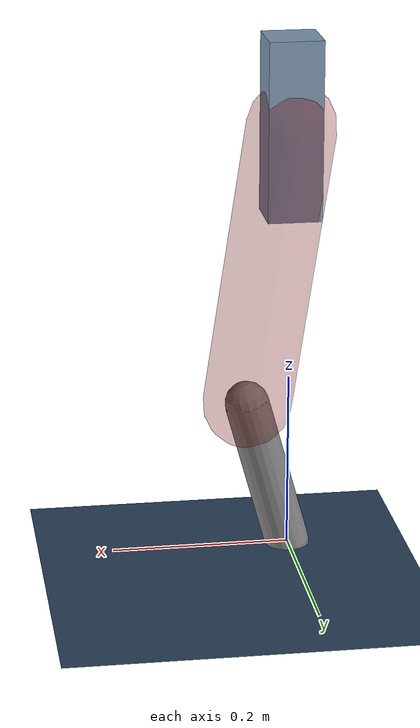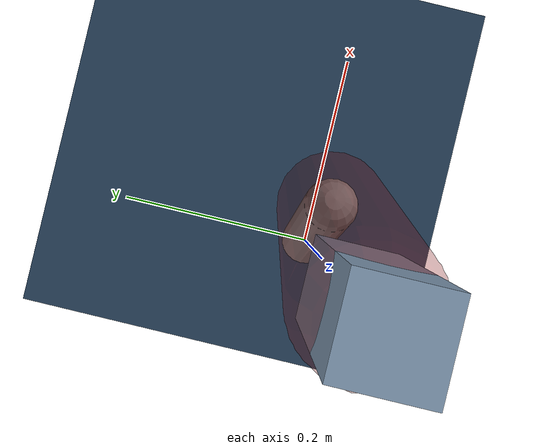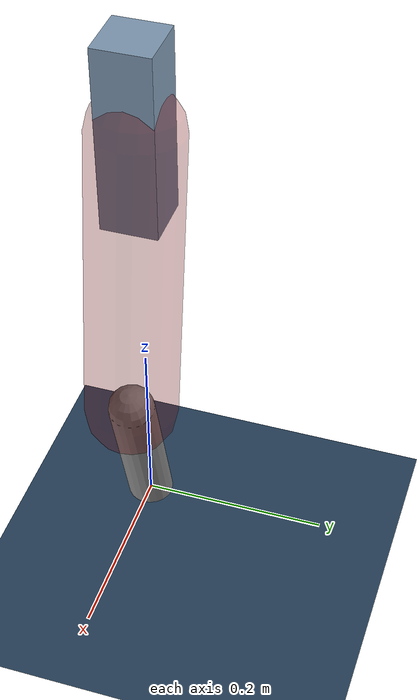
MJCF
<mujoco model="Hopper2D">
	<compiler inertiafromgeom="true" angle="radian" />
	<option timestep="0.001" integrator="implicit" cone="elliptic" solver="Newton" tolerance="1e-10" />

	<default>
		<geom contype="1" conaffinity="1" condim="3" friction="2 0.005 0.0001" solref="0.005 1" />
		<joint limited="true" damping="0.1" />
	</default>

	<asset>
		<texture name="skybox" type="skybox" builtin="gradient" rgb1=".4 .6 .8" rgb2="0 0 0" width="800" height="800" />
		<texture name="grid" type="2d" builtin="checker" rgb1=".1 .2 .3" rgb2=".2 .3 .4" width="300" height="300" mark="edge" markrgb=".2 .3 .4" />
		<material name="ground" texture="grid" texrepeat="1 1" texuniform="true" reflectance="0.1" />
		<material name="leg" rgba="0.5 0.6 0.7 1" />
	</asset>

	<worldbody>

		<geom name="floor" type="plane" size="5 5 0.25" material="ground" />

		<light directional="false" diffuse="0.8 0.8 0.8" specular="0.3 0.3 0.3" pos="0 0 2" dir="0 0 -1" />
		<light mode="targetbodycom" target="base" directional="false" diffuse="0.8 0.8 0.8" specular="0.3 0.3 0.3" pos="0 0 2" dir="0 0 -1" />

		<camera name="fixed" pos="0 -2 1" xyaxes="1 0 0 0 0 1" />
		<camera name="tracking" mode="trackcom" pos="0 -3 1" />

		<body name="root" pos="0 0 0.48850399053325927">
			<joint name="slide_x" type="slide" axis="1 0 0" range="-100 100" />
			<joint name="slide_z" type="slide" axis="0 0 1" range="0 10" />

			<body name="base" pos="0 0 0">
				<geom name="torso" type="box" size="0.03 0.03 0.1" mass="3.744" material="leg" />

				<body name="link1" pos="0 0 0" euler="0 1.42238832760926 0">
					<joint type="hinge" axis="0 -1 0" pos="0 0 0" name="hinge1" limited="true" range="-3.14 3.14" stiffness="0" damping="0.1" />
					<geom name="thigh" type="capsule" fromto="0 0 0 0.32108747865688353 0 0" size="0.05" rgba="0.5 0 0 0.3" mass="1.0462361923735854" />

					<body name="link2" pos="0.32108747865688353 0 0" euler="0 0.41931261499603717 0">
						<joint type="hinge" axis="0 -1 0" pos="0 0 0" name="hinge2" limited="true" range="-3.14 3.14" stiffness="0" damping="0.1" />
						<geom name="shank" type="capsule" fromto="0 0 0 0.17741651187637575 0 0" size="0.025" mass="0.3816748606887382" />

					</body>
				</body>
			</body>
		</body>
	</worldbody>

	<actuator>
		<motor name="torque1" joint="hinge1" ctrlrange="-192.49586004045133 192.49586004045133" ctrllimited="true" gear="1" />
		<motor name="torque2" joint="hinge2" ctrlrange="-115.82986878875452 115.82986878875452" ctrllimited="true" gear="1" />
	</actuator>
</mujoco>
